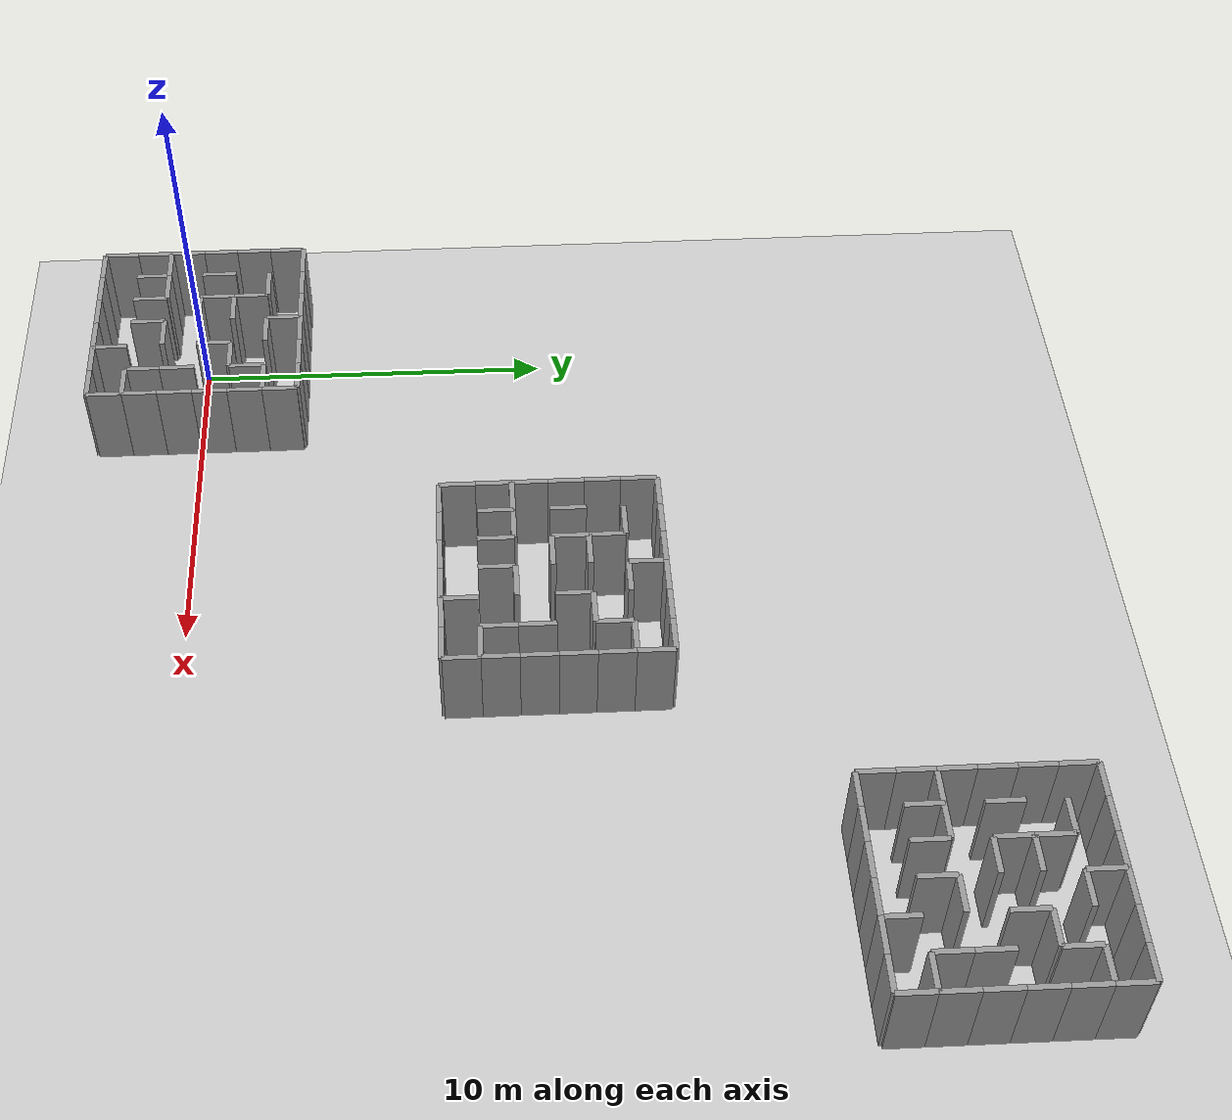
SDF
<sdf version="1.6">
  <world name="default">
    <include>
      <uri>model://sun</uri>
    </include>
    <include>
      <uri>model://ground_plane</uri>
    </include>

    <gui>
      <camera name="user_camera">
        <pose>0 0 10 0 1.57 0</pose> <!-- Overhead view pose -->
      </camera>
    </gui>

    <model name="maze_1"> <!-- Unique name for Maze 1 -->
      <include>
        <uri>model://maze_6x6</uri>
      </include>
      <pose>0 0 0 0 0 0</pose>
    </model>

    <!-- Maze 2: Start at (10, 0), Finish at (15, 10) -->
    <model name="maze_2"> <!-- Unique name for Maze 2 -->
      <include>
        <uri>model://maze_6x6</uri>
      </include>
      <pose>10 10 0 0 0 0</pose>
    </model>

    <!-- Maze 3: Start at (20, 10), Finish at (25, 20) -->
    <model name="maze_3"> <!-- Unique name for Maze 3 -->
      <include>
        <uri>model://maze_6x6</uri>
      </include>
      <pose>20 20 0 0 0 0</pose>
    </model>
  </world>
</sdf>
